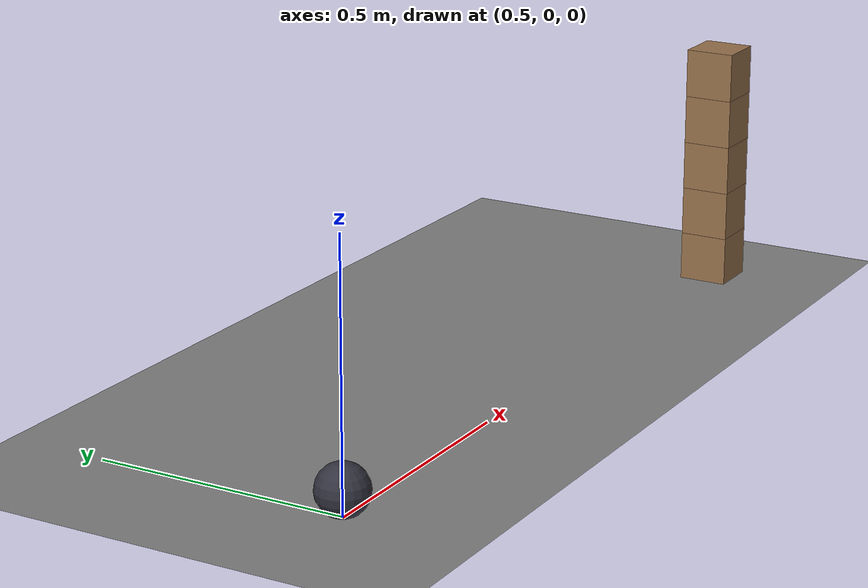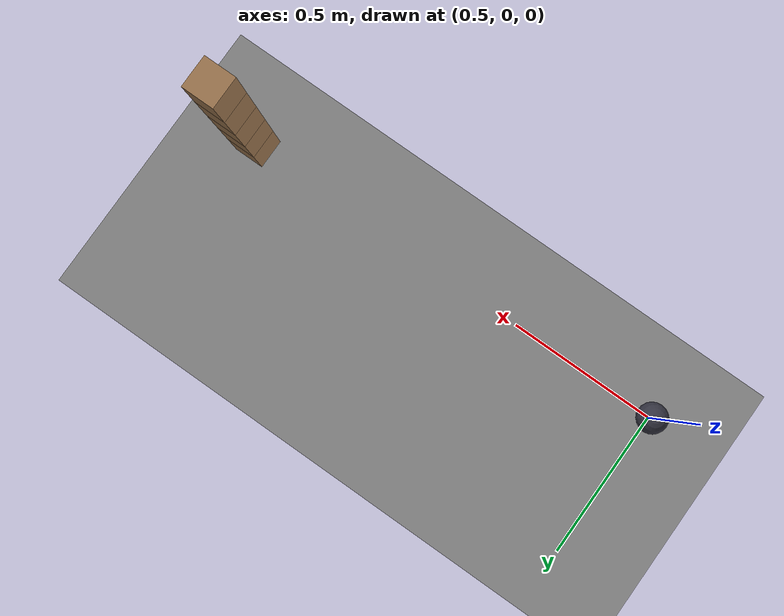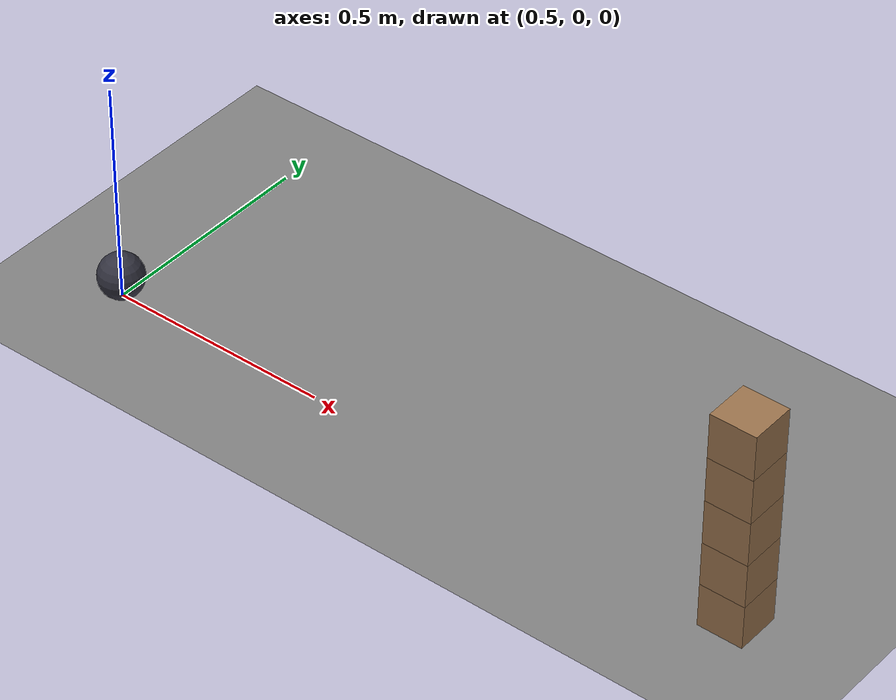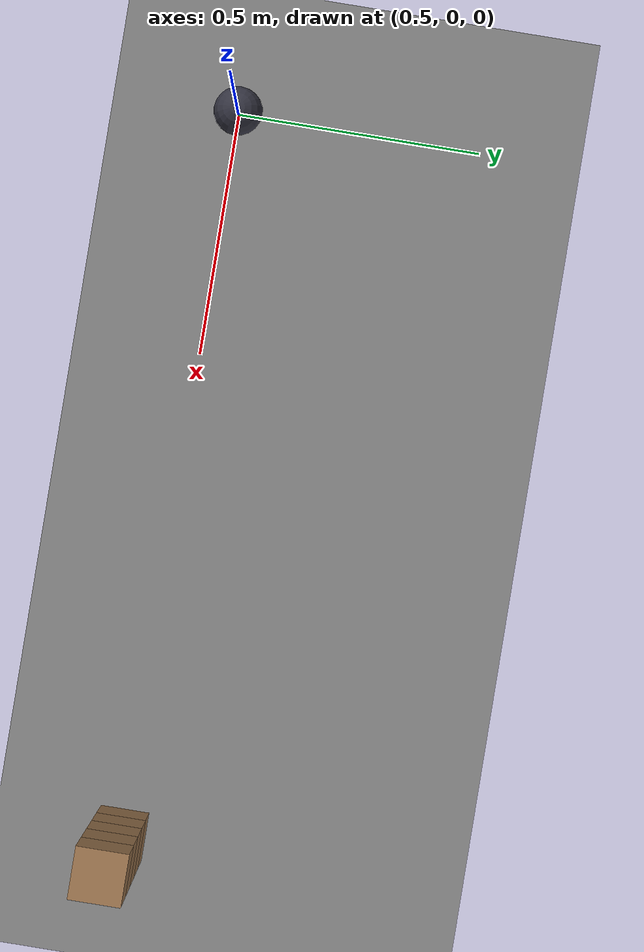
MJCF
<mujoco model="five-block_stack_toppled_from_the_bottom">
  <compiler angle="radian"/>
  <option timestep="0.002"/>
  <worldbody>
    <geom name="floor" type="plane" size="6 6 0.1" friction="0.8 0.005 0.002"/>
    <body name="block1" pos="2 0 0.05">
      <freejoint/>
      <geom name="block1" type="box" pos="0 0 0" size="0.05 0.05 0.05" mass="0.3" friction="0.8 0.005 0.002" rgba="0.6 0.45 0.3 1"/>
    </body>
    <body name="block2" pos="2 0 0.15">
      <freejoint/>
      <geom name="block2" type="box" pos="0 0 0" size="0.05 0.05 0.05" mass="0.3" friction="0.8 0.005 0.002" rgba="0.6 0.45 0.3 1"/>
    </body>
    <body name="block3" pos="2 0 0.25">
      <freejoint/>
      <geom name="block3" type="box" pos="0 0 0" size="0.05 0.05 0.05" mass="0.3" friction="0.8 0.005 0.002" rgba="0.6 0.45 0.3 1"/>
    </body>
    <body name="block4" pos="2 0 0.35">
      <freejoint/>
      <geom name="block4" type="box" pos="0 0 0" size="0.05 0.05 0.05" mass="0.3" friction="0.8 0.005 0.002" rgba="0.6 0.45 0.3 1"/>
    </body>
    <body name="block5" pos="2 0 0.45">
      <freejoint/>
      <geom name="block5" type="box" pos="0 0 0" size="0.05 0.05 0.05" mass="0.3" friction="0.8 0.005 0.002" rgba="0.6 0.45 0.3 1"/>
    </body>
    <body name="ball" pos="0.5 0 0.05">
      <freejoint/>
      <geom name="ball" type="sphere" pos="0 0 0" size="0.05" mass="2" condim="6" friction="0.8 0.01 0.002" solref="0.01 1" rgba="0.2 0.2 0.25 1"/>
    </body>
  </worldbody>
  <keyframe>
    <key name="start" qpos="2 0 0.05 1 0 0 0 2 0 0.15 1 0 0 0 2 0 0.25 1 0 0 0 2 0 0.35 1 0 0 0 2 0 0.45 1 0 0 0 0.5 0 0.05 1 0 0 0" qvel="0 0 0 0 0 0 0 0 0 0 0 0 0 0 0 0 0 0 0 0 0 0 0 0 0 0 0 0 0 0 1.5 0 0 0 0 0"/>
  </keyframe>
</mujoco>
